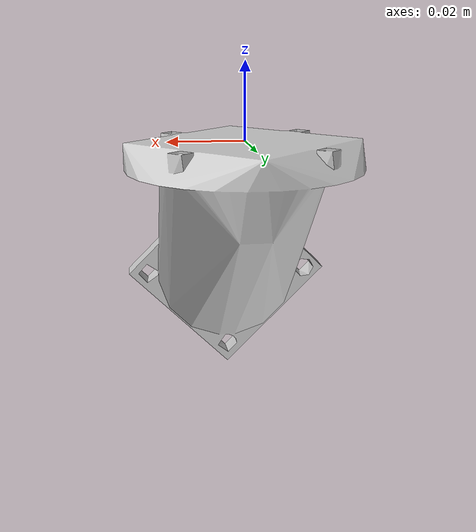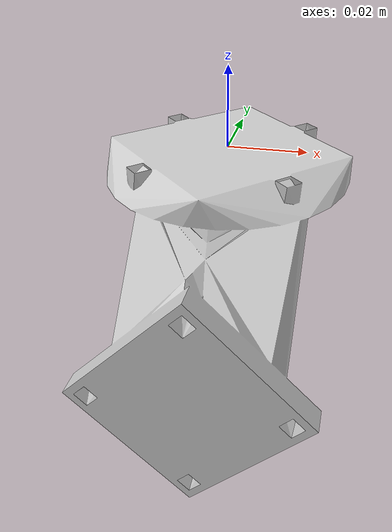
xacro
<?xml version="1.0" ?>
<robot xmlns:xacro="http://wiki.ros.org/xacro" name = "robot" >
<xacro:macro name="my_robot" params="robot_name">
<xacro:property name="robot_prefix" value="${robot_name}" />
<xacro:property name="joint_0_name" value="${robot_prefix}base_mount" />
<xacro:property name="link_1_name" value="${robot_prefix}mount" />
<xacro:property name="link_0_name" value="${robot_prefix}base" />
  <joint name="${joint_0_name}" type="fixed">
    <origin xyz="0.0 -0.047 -0.047" rpy="1.5707963267948966 -0.0 0.0"/>
    <axis xyz="1 0 0"/>
    <parent link="${link_0_name}"/>
    <child link="${link_1_name}"/>
    <limit effort="1000" lower="-1.548" upper="1.548" velocity="0.5"/>
  </joint>
  <link name="${link_0_name}">
    <visual>
      <origin xyz="-0.052 -0.0 -0.0" rpy="0.0 -0.0 0.0"/>
      <geometry>
        <mesh filename="package://reconcycle_softhand_mount/meshes/Component10.stl"/>
      </geometry>
      <material name="color0">
        <color rgba="0.7991027235984802 0.7991027235984802 0.7991027235984802 1"/>
      </material>
    </visual>
  </link>
  <link name="${link_1_name}"/>
</xacro:macro>

    <xacro:arg name="robot_namespace"  default=""/>
    <xacro:arg name="standalone"  default="true"/>
    <xacro:property name="test_value" value="$(arg standalone)" />

    <xacro:if value="${test_value}">

        <xacro:property name="this_robot_name" value="" />

    </xacro:if>

    <xacro:my_robot robot_name="${this_robot_name}" />

</robot>
